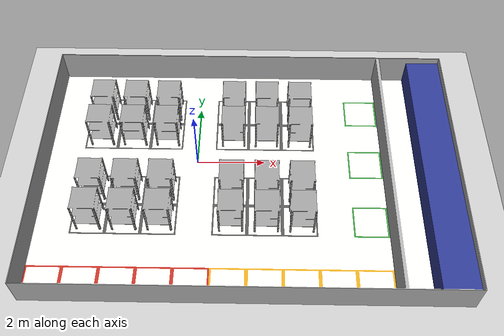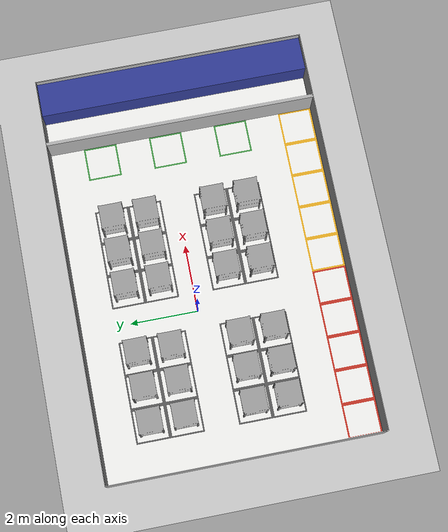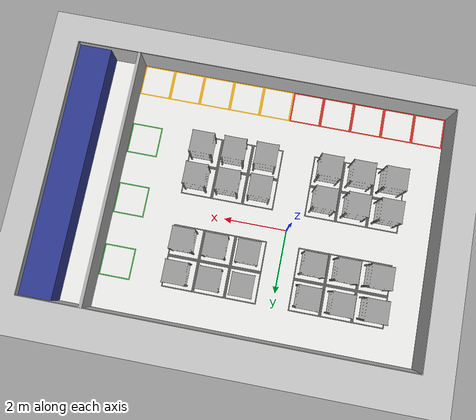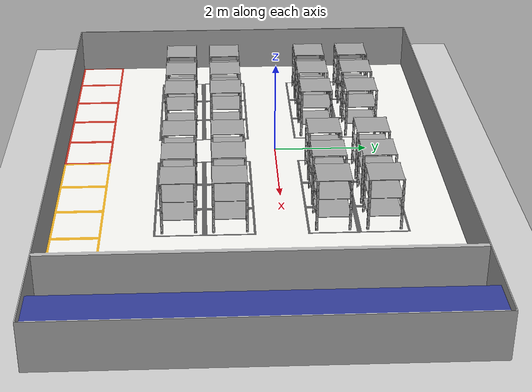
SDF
<sdf version="1.5">
 <world name="default">
  <light name="sun" type="directional">
   <cast_shadows>0</cast_shadows>
   <pose>0 0 10 0 -0 0</pose>
   <diffuse>0.8 0.8 0.8 1</diffuse>
   <specular>0.2 0.2 0.2 1</specular>
   <attenuation>
    <range>1000</range>
    <constant>0.9</constant>
    <linear>0.01</linear>
    <quadratic>0.001</quadratic>
   </attenuation>
   <direction>0.5 0.1 -0.9</direction>
  </light>
  <scene><ambient>0.4 0.4 0.4 1</ambient><background>0.7 0.7 0.7 1</background><shadows>0</shadows></scene>
  <physics type="ode">
   <max_step_size>0.01</max_step_size>
   <real_time_factor>1</real_time_factor>
   <real_time_update_rate>100</real_time_update_rate>
   <gravity>0 0 -9.8</gravity>
  </physics>
  <include><uri>model://ground_plane</uri></include>
  <include><uri>model://warehouse</uri><pose>-4.45 3.44 0 0 0 0</pose></include>
  <model name="A1">
   <include>
    <uri>model://shelf</uri>
    <pose>-2.938241 -2.052545 0.009981 0.000074 -0.000016 0.000406</pose>
   </include>
  </model>
  <model name="A2">
   <include>
    <uri>model://shelf</uri>
    <pose>-1.938241 -2.052545 0.009981 0.000074 -0.000016 0.000406</pose>
   </include>
  </model>
  <model name="A3">
   <include>
    <uri>model://shelf</uri>
    <pose>-0.938241 -2.052545 0.009981 0.000074 -0.000016 0.000406</pose>
   </include>
  </model>
  <model name="A4">
   <include>
    <uri>model://shelf</uri>
    <pose>1.061759 -2.052545 0.009981 0.000074 -0.000016 0.000406</pose>
   </include>
  </model>
  <model name="A5">
   <include>
    <uri>model://shelf</uri>
    <pose>2.061759 -2.052545 0.009981 0.000074 -0.000016 0.000406</pose>
   </include>
  </model>
  <model name="A6">
   <include>
    <uri>model://shelf</uri>
    <pose>3.061759 -2.052545 0.009981 0.000074 -0.000016 0.000406</pose>
   </include>
  </model>
  <model name="B1">
   <include>
    <uri>model://shelf</uri>
    <pose>-2.938241 -1.052545 0.009981 0.000074 -0.000016 0.000406</pose>
   </include>
  </model>
  <model name="B2">
   <include>
    <uri>model://shelf</uri>
    <pose>-1.938241 -1.052545 0.009981 0.000074 -0.000016 0.000406</pose>
   </include>
  </model>
  <model name="B3">
   <include>
    <uri>model://shelf</uri>
    <pose>-0.938241 -1.052545 0.009981 0.000074 -0.000016 0.000406</pose>
   </include>
  </model>
  <model name="B4">
   <include>
    <uri>model://shelf</uri>
    <pose>1.061759 -1.052545 0.009981 0.000074 -0.000016 0.000406</pose>
   </include>
  </model>
  <model name="B5">
   <include>
    <uri>model://shelf</uri>
    <pose>2.061759 -1.052545 0.009981 0.000074 -0.000016 0.000406</pose>
   </include>
  </model>
  <model name="B6">
   <include>
    <uri>model://shelf</uri>
    <pose>3.061759 -1.052545 0.009981 0.000074 -0.000016 0.000406</pose>
   </include>
  </model>
  <model name="C1">
   <include>
    <uri>model://shelf</uri>
    <pose>-2.938241 0.947455 0.009981 0.000074 -0.000016 0.000406</pose>
   </include>
  </model>
  <model name="C2">
   <include>
    <uri>model://shelf</uri>
    <pose>-1.938241 0.947455 0.009981 0.000074 -0.000016 0.000406</pose>
   </include>
  </model>
  <model name="C3">
   <include>
    <uri>model://shelf</uri>
    <pose>-0.938241 0.947455 0.009981 0.000074 -0.000016 0.000406</pose>
   </include>
  </model>
  <model name="C4">
   <include><uri>model://shelf</uri><pose>1.061759 0.947455 0.009981 0.000074 -0.000016 0.000406</pose></include>
  </model>
  <model name="C5">
   <include><uri>model://shelf</uri><pose>2.061759 0.947455 0.009981 0.000074 -0.000016 0.000406</pose></include>
  </model>
  <model name="C6">
   <include><uri>model://shelf</uri><pose>3.061759 0.947455 0.009981 0.000074 -0.000016 0.000406</pose></include>
  </model>
  <model name="D1">
   <include>
    <uri>model://shelf</uri>
    <pose>-2.938241 1.947455 0.009981 0.000074 -0.000016 0.000406</pose>
   </include>
  </model>
  <model name="D2">
   <include>
    <uri>model://shelf</uri>
    <pose>-1.938241 1.947455 0.009981 0.000074 -0.000016 0.000406</pose>
   </include>
  </model>
  <model name="D3">
   <include>
    <uri>model://shelf</uri>
    <pose>-0.938241 1.947455 0.009981 0.000074 -0.000016 0.000406</pose>
   </include>
  </model>
  <model name="D4">
   <include><uri>model://shelf</uri><pose>1.061759 1.947455 0.009981 0.000074 -0.000016 0.000406</pose></include>
  </model>
  <model name="D5">
   <include><uri>model://shelf</uri><pose>2.061759 1.947455 0.009981 0.000074 -0.000016 0.000406</pose></include>
  </model>
  <model name="D6">
   <include><uri>model://shelf</uri><pose>3.061759 1.947455 0.009981 0.000074 -0.000016 0.000406</pose></include>
  </model>
 </world>
</sdf>

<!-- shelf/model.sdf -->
<sdf version="1.5">
  <model name="shelf">
    <static>true</static>

    <link name="link">
      <collision name="collision">
        <geometry>
          <mesh>
            <uri>model://shelf/meshes/shelf.dae</uri>
          </mesh>
        </geometry>
      </collision>
      <visual name="visual">
        <geometry>
          <mesh>
            <uri>model://shelf/meshes/shelf.dae</uri>
          </mesh>
        </geometry>
      </visual>
    </link>
  </model>
</sdf>

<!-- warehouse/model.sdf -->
<sdf version="1.5">
  <model name="warehouse">
    <static>true</static>

    <link name="link">
      <collision name="collision">
        <geometry>
          <mesh>
            <uri>model://warehouse/meshes/area_warehouse1.dae</uri>
          </mesh>
        </geometry>
      </collision>
      <visual name="visual">
        <geometry>
          <mesh>
            <uri>model://warehouse/meshes/area_warehouse1.dae</uri>
          </mesh>
        </geometry>
      </visual>
    </link>
  </model>
</sdf>
